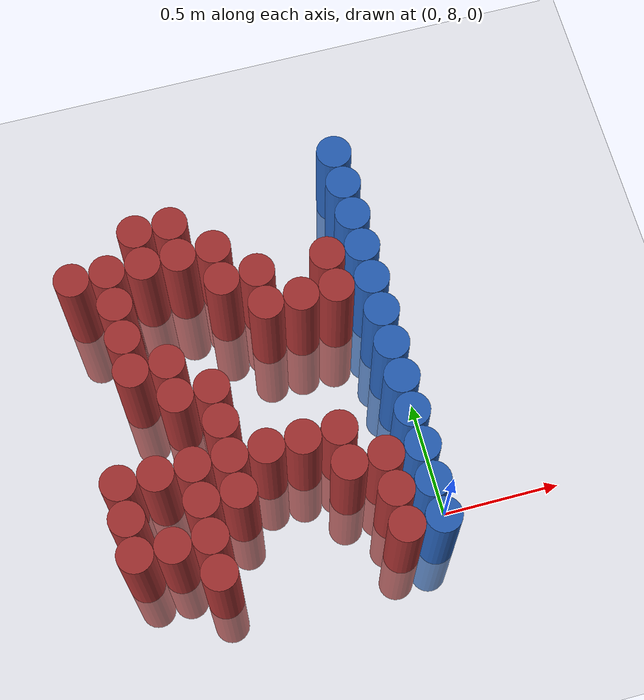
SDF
<sdf version="1.6">
 <world name="default">
  <model name="ground_plane">
   <static>1</static>
   <link name="link">
    <collision name="collision">
     <geometry><plane><normal>0 0 1</normal><size>100 100</size></plane></geometry>
     <surface><friction><ode><mu>100</mu><mu2>50</mu2></ode></friction></surface>
    </collision>
    <visual name="visual">
     <cast_shadows>0</cast_shadows>
     <geometry><plane><normal>0 0 1</normal><size>100 100</size></plane></geometry>
     <material>
      <script><uri>file://media/materials/scripts/gazebo.material</uri><name>Gazebo/Grey</name></script>
     </material>
    </visual>
   </link>
  </model>
  <model name="unit_cylinder_231">
   <static>1</static>
   <pose>-1.275000 8.025000 0.000000 0.000000 0.000000 0.000000</pose>
   <link name="link">
    <inertial>
     <mass>1</mass>
     <inertia><ixx>0.145833</ixx><ixy>0</ixy><ixz>0</ixz><iyy>0.145833</iyy><iyz>0</iyz><izz>0.125</izz></inertia>
    </inertial>
    <collision name="collision">
     <geometry><cylinder><radius>0.075000</radius><length>1</length></cylinder></geometry>
    </collision>
    <visual name="visual">
     <geometry><cylinder><radius>0.075000</radius><length>1</length></cylinder></geometry>
     <material>
      <ambient>0.648000 0.192000 0.192000 1</ambient>
      <diffuse>0.648000 0.192000 0.192000 1</diffuse>
     </material>
     <material>
      <script><name>Gazebo/Grey</name><uri>file://media/materials/scripts/gazebo.material</uri></script>
     </material>
    </visual>
   </link>
  </model>
  <model name="unit_cylinder_232">
   <static>1</static>
   <pose>-1.275000 8.175000 0.000000 0.000000 0.000000 0.000000</pose>
   <link name="link">
    <inertial>
     <mass>1</mass>
     <inertia><ixx>0.145833</ixx><ixy>0</ixy><ixz>0</ixz><iyy>0.145833</iyy><iyz>0</iyz><izz>0.125</izz></inertia>
    </inertial>
    <collision name="collision">
     <geometry><cylinder><radius>0.075000</radius><length>1</length></cylinder></geometry>
    </collision>
    <visual name="visual">
     <geometry><cylinder><radius>0.075000</radius><length>1</length></cylinder></geometry>
     <material>
      <ambient>0.648000 0.192000 0.192000 1</ambient>
      <diffuse>0.648000 0.192000 0.192000 1</diffuse>
     </material>
     <material>
      <script><name>Gazebo/Grey</name><uri>file://media/materials/scripts/gazebo.material</uri></script>
     </material>
    </visual>
   </link>
  </model>
  <model name="unit_cylinder_233">
   <static>1</static>
   <pose>-1.275000 8.325000 0.000000 0.000000 0.000000 0.000000</pose>
   <link name="link">
    <inertial>
     <mass>1</mass>
     <inertia><ixx>0.145833</ixx><ixy>0</ixy><ixz>0</ixz><iyy>0.145833</iyy><iyz>0</iyz><izz>0.125</izz></inertia>
    </inertial>
    <collision name="collision">
     <geometry><cylinder><radius>0.075000</radius><length>1</length></cylinder></geometry>
    </collision>
    <visual name="visual">
     <geometry><cylinder><radius>0.075000</radius><length>1</length></cylinder></geometry>
     <material>
      <ambient>0.648000 0.192000 0.192000 1</ambient>
      <diffuse>0.648000 0.192000 0.192000 1</diffuse>
     </material>
     <material>
      <script><name>Gazebo/Grey</name><uri>file://media/materials/scripts/gazebo.material</uri></script>
     </material>
    </visual>
   </link>
  </model>
  <model name="unit_cylinder_234">
   <static>1</static>
   <pose>-1.275000 9.225000 0.000000 0.000000 0.000000 0.000000</pose>
   <link name="link">
    <inertial>
     <mass>1</mass>
     <inertia><ixx>0.145833</ixx><ixy>0</ixy><ixz>0</ixz><iyy>0.145833</iyy><iyz>0</iyz><izz>0.125</izz></inertia>
    </inertial>
    <collision name="collision">
     <geometry><cylinder><radius>0.075000</radius><length>1</length></cylinder></geometry>
    </collision>
    <visual name="visual">
     <geometry><cylinder><radius>0.075000</radius><length>1</length></cylinder></geometry>
     <material>
      <ambient>0.648000 0.192000 0.192000 1</ambient>
      <diffuse>0.648000 0.192000 0.192000 1</diffuse>
     </material>
     <material>
      <script><name>Gazebo/Grey</name><uri>file://media/materials/scripts/gazebo.material</uri></script>
     </material>
    </visual>
   </link>
  </model>
  <model name="unit_cylinder_242">
   <static>1</static>
   <pose>-1.125000 8.025000 0.000000 0.000000 0.000000 0.000000</pose>
   <link name="link">
    <inertial>
     <mass>1</mass>
     <inertia><ixx>0.145833</ixx><ixy>0</ixy><ixz>0</ixz><iyy>0.145833</iyy><iyz>0</iyz><izz>0.125</izz></inertia>
    </inertial>
    <collision name="collision">
     <geometry><cylinder><radius>0.075000</radius><length>1</length></cylinder></geometry>
    </collision>
    <visual name="visual">
     <geometry><cylinder><radius>0.075000</radius><length>1</length></cylinder></geometry>
     <material>
      <ambient>0.648000 0.192000 0.192000 1</ambient>
      <diffuse>0.648000 0.192000 0.192000 1</diffuse>
     </material>
     <material>
      <script><name>Gazebo/Grey</name><uri>file://media/materials/scripts/gazebo.material</uri></script>
     </material>
    </visual>
   </link>
  </model>
  <model name="unit_cylinder_243">
   <static>1</static>
   <pose>-1.125000 8.325000 0.000000 0.000000 0.000000 0.000000</pose>
   <link name="link">
    <inertial>
     <mass>1</mass>
     <inertia><ixx>0.145833</ixx><ixy>0</ixy><ixz>0</ixz><iyy>0.145833</iyy><iyz>0</iyz><izz>0.125</izz></inertia>
    </inertial>
    <collision name="collision">
     <geometry><cylinder><radius>0.075000</radius><length>1</length></cylinder></geometry>
    </collision>
    <visual name="visual">
     <geometry><cylinder><radius>0.075000</radius><length>1</length></cylinder></geometry>
     <material>
      <ambient>0.648000 0.192000 0.192000 1</ambient>
      <diffuse>0.648000 0.192000 0.192000 1</diffuse>
     </material>
     <material>
      <script><name>Gazebo/Grey</name><uri>file://media/materials/scripts/gazebo.material</uri></script>
     </material>
    </visual>
   </link>
  </model>
  <model name="unit_cylinder_244">
   <static>1</static>
   <pose>-1.125000 8.775000 0.000000 0.000000 0.000000 0.000000</pose>
   <link name="link">
    <inertial>
     <mass>1</mass>
     <inertia><ixx>0.145833</ixx><ixy>0</ixy><ixz>0</ixz><iyy>0.145833</iyy><iyz>0</iyz><izz>0.125</izz></inertia>
    </inertial>
    <collision name="collision">
     <geometry><cylinder><radius>0.075000</radius><length>1</length></cylinder></geometry>
    </collision>
    <visual name="visual">
     <geometry><cylinder><radius>0.075000</radius><length>1</length></cylinder></geometry>
     <material>
      <ambient>0.648000 0.192000 0.192000 1</ambient>
      <diffuse>0.648000 0.192000 0.192000 1</diffuse>
     </material>
     <material>
      <script><name>Gazebo/Grey</name><uri>file://media/materials/scripts/gazebo.material</uri></script>
     </material>
    </visual>
   </link>
  </model>
  <model name="unit_cylinder_245">
   <static>1</static>
   <pose>-1.125000 8.925000 0.000000 0.000000 0.000000 0.000000</pose>
   <link name="link">
    <inertial>
     <mass>1</mass>
     <inertia><ixx>0.145833</ixx><ixy>0</ixy><ixz>0</ixz><iyy>0.145833</iyy><iyz>0</iyz><izz>0.125</izz></inertia>
    </inertial>
    <collision name="collision">
     <geometry><cylinder><radius>0.075000</radius><length>1</length></cylinder></geometry>
    </collision>
    <visual name="visual">
     <geometry><cylinder><radius>0.075000</radius><length>1</length></cylinder></geometry>
     <material>
      <ambient>0.648000 0.192000 0.192000 1</ambient>
      <diffuse>0.648000 0.192000 0.192000 1</diffuse>
     </material>
     <material>
      <script><name>Gazebo/Grey</name><uri>file://media/materials/scripts/gazebo.material</uri></script>
     </material>
    </visual>
   </link>
  </model>
  <model name="unit_cylinder_246">
   <static>1</static>
   <pose>-1.125000 9.075000 0.000000 0.000000 0.000000 0.000000</pose>
   <link name="link">
    <inertial>
     <mass>1</mass>
     <inertia><ixx>0.145833</ixx><ixy>0</ixy><ixz>0</ixz><iyy>0.145833</iyy><iyz>0</iyz><izz>0.125</izz></inertia>
    </inertial>
    <collision name="collision">
     <geometry><cylinder><radius>0.075000</radius><length>1</length></cylinder></geometry>
    </collision>
    <visual name="visual">
     <geometry><cylinder><radius>0.075000</radius><length>1</length></cylinder></geometry>
     <material>
      <ambient>0.648000 0.192000 0.192000 1</ambient>
      <diffuse>0.648000 0.192000 0.192000 1</diffuse>
     </material>
     <material>
      <script><name>Gazebo/Grey</name><uri>file://media/materials/scripts/gazebo.material</uri></script>
     </material>
    </visual>
   </link>
  </model>
  <model name="unit_cylinder_247">
   <static>1</static>
   <pose>-1.125000 9.225000 0.000000 0.000000 0.000000 0.000000</pose>
   <link name="link">
    <inertial>
     <mass>1</mass>
     <inertia><ixx>0.145833</ixx><ixy>0</ixy><ixz>0</ixz><iyy>0.145833</iyy><iyz>0</iyz><izz>0.125</izz></inertia>
    </inertial>
    <collision name="collision">
     <geometry><cylinder><radius>0.075000</radius><length>1</length></cylinder></geometry>
    </collision>
    <visual name="visual">
     <geometry><cylinder><radius>0.075000</radius><length>1</length></cylinder></geometry>
     <material>
      <ambient>0.648000 0.192000 0.192000 1</ambient>
      <diffuse>0.648000 0.192000 0.192000 1</diffuse>
     </material>
     <material>
      <script><name>Gazebo/Grey</name><uri>file://media/materials/scripts/gazebo.material</uri></script>
     </material>
    </visual>
   </link>
  </model>
  <model name="unit_cylinder_257">
   <static>1</static>
   <pose>-0.975000 7.875000 0.000000 0.000000 0.000000 0.000000</pose>
   <link name="link">
    <inertial>
     <mass>1</mass>
     <inertia><ixx>0.145833</ixx><ixy>0</ixy><ixz>0</ixz><iyy>0.145833</iyy><iyz>0</iyz><izz>0.125</izz></inertia>
    </inertial>
    <collision name="collision">
     <geometry><cylinder><radius>0.075000</radius><length>1</length></cylinder></geometry>
    </collision>
    <visual name="visual">
     <geometry><cylinder><radius>0.075000</radius><length>1</length></cylinder></geometry>
     <material>
      <ambient>0.648000 0.192000 0.192000 1</ambient>
      <diffuse>0.648000 0.192000 0.192000 1</diffuse>
     </material>
     <material>
      <script><name>Gazebo/Grey</name><uri>file://media/materials/scripts/gazebo.material</uri></script>
     </material>
    </visual>
   </link>
  </model>
  <model name="unit_cylinder_258">
   <static>1</static>
   <pose>-0.975000 8.025000 0.000000 0.000000 0.000000 0.000000</pose>
   <link name="link">
    <inertial>
     <mass>1</mass>
     <inertia><ixx>0.145833</ixx><ixy>0</ixy><ixz>0</ixz><iyy>0.145833</iyy><iyz>0</iyz><izz>0.125</izz></inertia>
    </inertial>
    <collision name="collision">
     <geometry><cylinder><radius>0.075000</radius><length>1</length></cylinder></geometry>
    </collision>
    <visual name="visual">
     <geometry><cylinder><radius>0.075000</radius><length>1</length></cylinder></geometry>
     <material>
      <ambient>0.648000 0.192000 0.192000 1</ambient>
      <diffuse>0.648000 0.192000 0.192000 1</diffuse>
     </material>
     <material>
      <script><name>Gazebo/Grey</name><uri>file://media/materials/scripts/gazebo.material</uri></script>
     </material>
    </visual>
   </link>
  </model>
  <model name="unit_cylinder_259">
   <static>1</static>
   <pose>-0.975000 8.175000 0.000000 0.000000 0.000000 0.000000</pose>
   <link name="link">
    <inertial>
     <mass>1</mass>
     <inertia><ixx>0.145833</ixx><ixy>0</ixy><ixz>0</ixz><iyy>0.145833</iyy><iyz>0</iyz><izz>0.125</izz></inertia>
    </inertial>
    <collision name="collision">
     <geometry><cylinder><radius>0.075000</radius><length>1</length></cylinder></geometry>
    </collision>
    <visual name="visual">
     <geometry><cylinder><radius>0.075000</radius><length>1</length></cylinder></geometry>
     <material>
      <ambient>0.648000 0.192000 0.192000 1</ambient>
      <diffuse>0.648000 0.192000 0.192000 1</diffuse>
     </material>
     <material>
      <script><name>Gazebo/Grey</name><uri>file://media/materials/scripts/gazebo.material</uri></script>
     </material>
    </visual>
   </link>
  </model>
  <model name="unit_cylinder_260">
   <static>1</static>
   <pose>-0.975000 8.325000 0.000000 0.000000 0.000000 0.000000</pose>
   <link name="link">
    <inertial>
     <mass>1</mass>
     <inertia><ixx>0.145833</ixx><ixy>0</ixy><ixz>0</ixz><iyy>0.145833</iyy><iyz>0</iyz><izz>0.125</izz></inertia>
    </inertial>
    <collision name="collision">
     <geometry><cylinder><radius>0.075000</radius><length>1</length></cylinder></geometry>
    </collision>
    <visual name="visual">
     <geometry><cylinder><radius>0.075000</radius><length>1</length></cylinder></geometry>
     <material>
      <ambient>0.648000 0.192000 0.192000 1</ambient>
      <diffuse>0.648000 0.192000 0.192000 1</diffuse>
     </material>
     <material>
      <script><name>Gazebo/Grey</name><uri>file://media/materials/scripts/gazebo.material</uri></script>
     </material>
    </visual>
   </link>
  </model>
  <model name="unit_cylinder_261">
   <static>1</static>
   <pose>-0.975000 8.625000 0.000000 0.000000 0.000000 0.000000</pose>
   <link name="link">
    <inertial>
     <mass>1</mass>
     <inertia><ixx>0.145833</ixx><ixy>0</ixy><ixz>0</ixz><iyy>0.145833</iyy><iyz>0</iyz><izz>0.125</izz></inertia>
    </inertial>
    <collision name="collision">
     <geometry><cylinder><radius>0.075000</radius><length>1</length></cylinder></geometry>
    </collision>
    <visual name="visual">
     <geometry><cylinder><radius>0.075000</radius><length>1</length></cylinder></geometry>
     <material>
      <ambient>0.648000 0.192000 0.192000 1</ambient>
      <diffuse>0.648000 0.192000 0.192000 1</diffuse>
     </material>
     <material>
      <script><name>Gazebo/Grey</name><uri>file://media/materials/scripts/gazebo.material</uri></script>
     </material>
    </visual>
   </link>
  </model>
  <model name="unit_cylinder_262">
   <static>1</static>
   <pose>-0.975000 8.775000 0.000000 0.000000 0.000000 0.000000</pose>
   <link name="link">
    <inertial>
     <mass>1</mass>
     <inertia><ixx>0.145833</ixx><ixy>0</ixy><ixz>0</ixz><iyy>0.145833</iyy><iyz>0</iyz><izz>0.125</izz></inertia>
    </inertial>
    <collision name="collision">
     <geometry><cylinder><radius>0.075000</radius><length>1</length></cylinder></geometry>
    </collision>
    <visual name="visual">
     <geometry><cylinder><radius>0.075000</radius><length>1</length></cylinder></geometry>
     <material>
      <ambient>0.648000 0.192000 0.192000 1</ambient>
      <diffuse>0.648000 0.192000 0.192000 1</diffuse>
     </material>
     <material>
      <script><name>Gazebo/Grey</name><uri>file://media/materials/scripts/gazebo.material</uri></script>
     </material>
    </visual>
   </link>
  </model>
  <model name="unit_cylinder_263">
   <static>1</static>
   <pose>-0.975000 9.225000 0.000000 0.000000 0.000000 0.000000</pose>
   <link name="link">
    <inertial>
     <mass>1</mass>
     <inertia><ixx>0.145833</ixx><ixy>0</ixy><ixz>0</ixz><iyy>0.145833</iyy><iyz>0</iyz><izz>0.125</izz></inertia>
    </inertial>
    <collision name="collision">
     <geometry><cylinder><radius>0.075000</radius><length>1</length></cylinder></geometry>
    </collision>
    <visual name="visual">
     <geometry><cylinder><radius>0.075000</radius><length>1</length></cylinder></geometry>
     <material>
      <ambient>0.648000 0.192000 0.192000 1</ambient>
      <diffuse>0.648000 0.192000 0.192000 1</diffuse>
     </material>
     <material>
      <script><name>Gazebo/Grey</name><uri>file://media/materials/scripts/gazebo.material</uri></script>
     </material>
    </visual>
   </link>
  </model>
  <model name="unit_cylinder_264">
   <static>1</static>
   <pose>-0.975000 9.375000 0.000000 0.000000 0.000000 0.000000</pose>
   <link name="link">
    <inertial>
     <mass>1</mass>
     <inertia><ixx>0.145833</ixx><ixy>0</ixy><ixz>0</ixz><iyy>0.145833</iyy><iyz>0</iyz><izz>0.125</izz></inertia>
    </inertial>
    <collision name="collision">
     <geometry><cylinder><radius>0.075000</radius><length>1</length></cylinder></geometry>
    </collision>
    <visual name="visual">
     <geometry><cylinder><radius>0.075000</radius><length>1</length></cylinder></geometry>
     <material>
      <ambient>0.648000 0.192000 0.192000 1</ambient>
      <diffuse>0.648000 0.192000 0.192000 1</diffuse>
     </material>
     <material>
      <script><name>Gazebo/Grey</name><uri>file://media/materials/scripts/gazebo.material</uri></script>
     </material>
    </visual>
   </link>
  </model>
  <model name="unit_cylinder_275">
   <static>1</static>
   <pose>-0.825000 8.175000 0.000000 0.000000 0.000000 0.000000</pose>
   <link name="link">
    <inertial>
     <mass>1</mass>
     <inertia><ixx>0.145833</ixx><ixy>0</ixy><ixz>0</ixz><iyy>0.145833</iyy><iyz>0</iyz><izz>0.125</izz></inertia>
    </inertial>
    <collision name="collision">
     <geometry><cylinder><radius>0.075000</radius><length>1</length></cylinder></geometry>
    </collision>
    <visual name="visual">
     <geometry><cylinder><radius>0.075000</radius><length>1</length></cylinder></geometry>
     <material>
      <ambient>0.648000 0.192000 0.192000 1</ambient>
      <diffuse>0.648000 0.192000 0.192000 1</diffuse>
     </material>
     <material>
      <script><name>Gazebo/Grey</name><uri>file://media/materials/scripts/gazebo.material</uri></script>
     </material>
    </visual>
   </link>
  </model>
  <model name="unit_cylinder_276">
   <static>1</static>
   <pose>-0.825000 8.325000 0.000000 0.000000 0.000000 0.000000</pose>
   <link name="link">
    <inertial>
     <mass>1</mass>
     <inertia><ixx>0.145833</ixx><ixy>0</ixy><ixz>0</ixz><iyy>0.145833</iyy><iyz>0</iyz><izz>0.125</izz></inertia>
    </inertial>
    <collision name="collision">
     <geometry><cylinder><radius>0.075000</radius><length>1</length></cylinder></geometry>
    </collision>
    <visual name="visual">
     <geometry><cylinder><radius>0.075000</radius><length>1</length></cylinder></geometry>
     <material>
      <ambient>0.648000 0.192000 0.192000 1</ambient>
      <diffuse>0.648000 0.192000 0.192000 1</diffuse>
     </material>
     <material>
      <script><name>Gazebo/Grey</name><uri>file://media/materials/scripts/gazebo.material</uri></script>
     </material>
    </visual>
   </link>
  </model>
  <model name="unit_cylinder_277">
   <static>1</static>
   <pose>-0.825000 8.475000 0.000000 0.000000 0.000000 0.000000</pose>
   <link name="link">
    <inertial>
     <mass>1</mass>
     <inertia><ixx>0.145833</ixx><ixy>0</ixy><ixz>0</ixz><iyy>0.145833</iyy><iyz>0</iyz><izz>0.125</izz></inertia>
    </inertial>
    <collision name="collision">
     <geometry><cylinder><radius>0.075000</radius><length>1</length></cylinder></geometry>
    </collision>
    <visual name="visual">
     <geometry><cylinder><radius>0.075000</radius><length>1</length></cylinder></geometry>
     <material>
      <ambient>0.648000 0.192000 0.192000 1</ambient>
      <diffuse>0.648000 0.192000 0.192000 1</diffuse>
     </material>
     <material>
      <script><name>Gazebo/Grey</name><uri>file://media/materials/scripts/gazebo.material</uri></script>
     </material>
    </visual>
   </link>
  </model>
  <model name="unit_cylinder_278">
   <static>1</static>
   <pose>-0.825000 8.625000 0.000000 0.000000 0.000000 0.000000</pose>
   <link name="link">
    <inertial>
     <mass>1</mass>
     <inertia><ixx>0.145833</ixx><ixy>0</ixy><ixz>0</ixz><iyy>0.145833</iyy><iyz>0</iyz><izz>0.125</izz></inertia>
    </inertial>
    <collision name="collision">
     <geometry><cylinder><radius>0.075000</radius><length>1</length></cylinder></geometry>
    </collision>
    <visual name="visual">
     <geometry><cylinder><radius>0.075000</radius><length>1</length></cylinder></geometry>
     <material>
      <ambient>0.648000 0.192000 0.192000 1</ambient>
      <diffuse>0.648000 0.192000 0.192000 1</diffuse>
     </material>
     <material>
      <script><name>Gazebo/Grey</name><uri>file://media/materials/scripts/gazebo.material</uri></script>
     </material>
    </visual>
   </link>
  </model>
  <model name="unit_cylinder_279">
   <static>1</static>
   <pose>-0.825000 9.225000 0.000000 0.000000 0.000000 0.000000</pose>
   <link name="link">
    <inertial>
     <mass>1</mass>
     <inertia><ixx>0.145833</ixx><ixy>0</ixy><ixz>0</ixz><iyy>0.145833</iyy><iyz>0</iyz><izz>0.125</izz></inertia>
    </inertial>
    <collision name="collision">
     <geometry><cylinder><radius>0.075000</radius><length>1</length></cylinder></geometry>
    </collision>
    <visual name="visual">
     <geometry><cylinder><radius>0.075000</radius><length>1</length></cylinder></geometry>
     <material>
      <ambient>0.648000 0.192000 0.192000 1</ambient>
      <diffuse>0.648000 0.192000 0.192000 1</diffuse>
     </material>
     <material>
      <script><name>Gazebo/Grey</name><uri>file://media/materials/scripts/gazebo.material</uri></script>
     </material>
    </visual>
   </link>
  </model>
  <model name="unit_cylinder_280">
   <static>1</static>
   <pose>-0.825000 9.375000 0.000000 0.000000 0.000000 0.000000</pose>
   <link name="link">
    <inertial>
     <mass>1</mass>
     <inertia><ixx>0.145833</ixx><ixy>0</ixy><ixz>0</ixz><iyy>0.145833</iyy><iyz>0</iyz><izz>0.125</izz></inertia>
    </inertial>
    <collision name="collision">
     <geometry><cylinder><radius>0.075000</radius><length>1</length></cylinder></geometry>
    </collision>
    <visual name="visual">
     <geometry><cylinder><radius>0.075000</radius><length>1</length></cylinder></geometry>
     <material>
      <ambient>0.648000 0.192000 0.192000 1</ambient>
      <diffuse>0.648000 0.192000 0.192000 1</diffuse>
     </material>
     <material>
      <script><name>Gazebo/Grey</name><uri>file://media/materials/scripts/gazebo.material</uri></script>
     </material>
    </visual>
   </link>
  </model>
  <model name="unit_cylinder_286">
   <static>1</static>
   <pose>-0.675000 8.325000 0.000000 0.000000 0.000000 0.000000</pose>
   <link name="link">
    <inertial>
     <mass>1</mass>
     <inertia><ixx>0.145833</ixx><ixy>0</ixy><ixz>0</ixz><iyy>0.145833</iyy><iyz>0</iyz><izz>0.125</izz></inertia>
    </inertial>
    <collision name="collision">
     <geometry><cylinder><radius>0.075000</radius><length>1</length></cylinder></geometry>
    </collision>
    <visual name="visual">
     <geometry><cylinder><radius>0.075000</radius><length>1</length></cylinder></geometry>
     <material>
      <ambient>0.648000 0.192000 0.192000 1</ambient>
      <diffuse>0.648000 0.192000 0.192000 1</diffuse>
     </material>
     <material>
      <script><name>Gazebo/Grey</name><uri>file://media/materials/scripts/gazebo.material</uri></script>
     </material>
    </visual>
   </link>
  </model>
  <model name="unit_cylinder_287">
   <static>1</static>
   <pose>-0.675000 9.075000 0.000000 0.000000 0.000000 0.000000</pose>
   <link name="link">
    <inertial>
     <mass>1</mass>
     <inertia><ixx>0.145833</ixx><ixy>0</ixy><ixz>0</ixz><iyy>0.145833</iyy><iyz>0</iyz><izz>0.125</izz></inertia>
    </inertial>
    <collision name="collision">
     <geometry><cylinder><radius>0.075000</radius><length>1</length></cylinder></geometry>
    </collision>
    <visual name="visual">
     <geometry><cylinder><radius>0.075000</radius><length>1</length></cylinder></geometry>
     <material>
      <ambient>0.648000 0.192000 0.192000 1</ambient>
      <diffuse>0.648000 0.192000 0.192000 1</diffuse>
     </material>
     <material>
      <script><name>Gazebo/Grey</name><uri>file://media/materials/scripts/gazebo.material</uri></script>
     </material>
    </visual>
   </link>
  </model>
  <model name="unit_cylinder_288">
   <static>1</static>
   <pose>-0.675000 9.225000 0.000000 0.000000 0.000000 0.000000</pose>
   <link name="link">
    <inertial>
     <mass>1</mass>
     <inertia><ixx>0.145833</ixx><ixy>0</ixy><ixz>0</ixz><iyy>0.145833</iyy><iyz>0</iyz><izz>0.125</izz></inertia>
    </inertial>
    <collision name="collision">
     <geometry><cylinder><radius>0.075000</radius><length>1</length></cylinder></geometry>
    </collision>
    <visual name="visual">
     <geometry><cylinder><radius>0.075000</radius><length>1</length></cylinder></geometry>
     <material>
      <ambient>0.648000 0.192000 0.192000 1</ambient>
      <diffuse>0.648000 0.192000 0.192000 1</diffuse>
     </material>
     <material>
      <script><name>Gazebo/Grey</name><uri>file://media/materials/scripts/gazebo.material</uri></script>
     </material>
    </visual>
   </link>
  </model>
  <model name="unit_cylinder_292">
   <static>1</static>
   <pose>-0.525000 8.325000 0.000000 0.000000 0.000000 0.000000</pose>
   <link name="link">
    <inertial>
     <mass>1</mass>
     <inertia><ixx>0.145833</ixx><ixy>0</ixy><ixz>0</ixz><iyy>0.145833</iyy><iyz>0</iyz><izz>0.125</izz></inertia>
    </inertial>
    <collision name="collision">
     <geometry><cylinder><radius>0.075000</radius><length>1</length></cylinder></geometry>
    </collision>
    <visual name="visual">
     <geometry><cylinder><radius>0.075000</radius><length>1</length></cylinder></geometry>
     <material>
      <ambient>0.648000 0.192000 0.192000 1</ambient>
      <diffuse>0.648000 0.192000 0.192000 1</diffuse>
     </material>
     <material>
      <script><name>Gazebo/Grey</name><uri>file://media/materials/scripts/gazebo.material</uri></script>
     </material>
    </visual>
   </link>
  </model>
  <model name="unit_cylinder_293">
   <static>1</static>
   <pose>-0.525000 8.925000 0.000000 0.000000 0.000000 0.000000</pose>
   <link name="link">
    <inertial>
     <mass>1</mass>
     <inertia><ixx>0.145833</ixx><ixy>0</ixy><ixz>0</ixz><iyy>0.145833</iyy><iyz>0</iyz><izz>0.125</izz></inertia>
    </inertial>
    <collision name="collision">
     <geometry><cylinder><radius>0.075000</radius><length>1</length></cylinder></geometry>
    </collision>
    <visual name="visual">
     <geometry><cylinder><radius>0.075000</radius><length>1</length></cylinder></geometry>
     <material>
      <ambient>0.648000 0.192000 0.192000 1</ambient>
      <diffuse>0.648000 0.192000 0.192000 1</diffuse>
     </material>
     <material>
      <script><name>Gazebo/Grey</name><uri>file://media/materials/scripts/gazebo.material</uri></script>
     </material>
    </visual>
   </link>
  </model>
  <model name="unit_cylinder_294">
   <static>1</static>
   <pose>-0.525000 9.075000 0.000000 0.000000 0.000000 0.000000</pose>
   <link name="link">
    <inertial>
     <mass>1</mass>
     <inertia><ixx>0.145833</ixx><ixy>0</ixy><ixz>0</ixz><iyy>0.145833</iyy><iyz>0</iyz><izz>0.125</izz></inertia>
    </inertial>
    <collision name="collision">
     <geometry><cylinder><radius>0.075000</radius><length>1</length></cylinder></geometry>
    </collision>
    <visual name="visual">
     <geometry><cylinder><radius>0.075000</radius><length>1</length></cylinder></geometry>
     <material>
      <ambient>0.648000 0.192000 0.192000 1</ambient>
      <diffuse>0.648000 0.192000 0.192000 1</diffuse>
     </material>
     <material>
      <script><name>Gazebo/Grey</name><uri>file://media/materials/scripts/gazebo.material</uri></script>
     </material>
    </visual>
   </link>
  </model>
  <model name="unit_cylinder_300">
   <static>1</static>
   <pose>-0.375000 8.175000 0.000000 0.000000 0.000000 0.000000</pose>
   <link name="link">
    <inertial>
     <mass>1</mass>
     <inertia><ixx>0.145833</ixx><ixy>0</ixy><ixz>0</ixz><iyy>0.145833</iyy><iyz>0</iyz><izz>0.125</izz></inertia>
    </inertial>
    <collision name="collision">
     <geometry><cylinder><radius>0.075000</radius><length>1</length></cylinder></geometry>
    </collision>
    <visual name="visual">
     <geometry><cylinder><radius>0.075000</radius><length>1</length></cylinder></geometry>
     <material>
      <ambient>0.648000 0.192000 0.192000 1</ambient>
      <diffuse>0.648000 0.192000 0.192000 1</diffuse>
     </material>
     <material>
      <script><name>Gazebo/Grey</name><uri>file://media/materials/scripts/gazebo.material</uri></script>
     </material>
    </visual>
   </link>
  </model>
  <model name="unit_cylinder_301">
   <static>1</static>
   <pose>-0.375000 8.325000 0.000000 0.000000 0.000000 0.000000</pose>
   <link name="link">
    <inertial>
     <mass>1</mass>
     <inertia><ixx>0.145833</ixx><ixy>0</ixy><ixz>0</ixz><iyy>0.145833</iyy><iyz>0</iyz><izz>0.125</izz></inertia>
    </inertial>
    <collision name="collision">
     <geometry><cylinder><radius>0.075000</radius><length>1</length></cylinder></geometry>
    </collision>
    <visual name="visual">
     <geometry><cylinder><radius>0.075000</radius><length>1</length></cylinder></geometry>
     <material>
      <ambient>0.648000 0.192000 0.192000 1</ambient>
      <diffuse>0.648000 0.192000 0.192000 1</diffuse>
     </material>
     <material>
      <script><name>Gazebo/Grey</name><uri>file://media/materials/scripts/gazebo.material</uri></script>
     </material>
    </visual>
   </link>
  </model>
  <model name="unit_cylinder_302">
   <static>1</static>
   <pose>-0.375000 8.925000 0.000000 0.000000 0.000000 0.000000</pose>
   <link name="link">
    <inertial>
     <mass>1</mass>
     <inertia><ixx>0.145833</ixx><ixy>0</ixy><ixz>0</ixz><iyy>0.145833</iyy><iyz>0</iyz><izz>0.125</izz></inertia>
    </inertial>
    <collision name="collision">
     <geometry><cylinder><radius>0.075000</radius><length>1</length></cylinder></geometry>
    </collision>
    <visual name="visual">
     <geometry><cylinder><radius>0.075000</radius><length>1</length></cylinder></geometry>
     <material>
      <ambient>0.648000 0.192000 0.192000 1</ambient>
      <diffuse>0.648000 0.192000 0.192000 1</diffuse>
     </material>
     <material>
      <script><name>Gazebo/Grey</name><uri>file://media/materials/scripts/gazebo.material</uri></script>
     </material>
    </visual>
   </link>
  </model>
  <model name="unit_cylinder_314">
   <static>1</static>
   <pose>-0.225000 7.875000 0.000000 0.000000 0.000000 0.000000</pose>
   <link name="link">
    <inertial>
     <mass>1</mass>
     <inertia><ixx>0.145833</ixx><ixy>0</ixy><ixz>0</ixz><iyy>0.145833</iyy><iyz>0</iyz><izz>0.125</izz></inertia>
    </inertial>
    <collision name="collision">
     <geometry><cylinder><radius>0.075000</radius><length>1</length></cylinder></geometry>
    </collision>
    <visual name="visual">
     <geometry><cylinder><radius>0.075000</radius><length>1</length></cylinder></geometry>
     <material>
      <ambient>0.648000 0.192000 0.192000 1</ambient>
      <diffuse>0.648000 0.192000 0.192000 1</diffuse>
     </material>
     <material>
      <script><name>Gazebo/Grey</name><uri>file://media/materials/scripts/gazebo.material</uri></script>
     </material>
    </visual>
   </link>
  </model>
  <model name="unit_cylinder_315">
   <static>1</static>
   <pose>-0.225000 8.025000 0.000000 0.000000 0.000000 0.000000</pose>
   <link name="link">
    <inertial>
     <mass>1</mass>
     <inertia><ixx>0.145833</ixx><ixy>0</ixy><ixz>0</ixz><iyy>0.145833</iyy><iyz>0</iyz><izz>0.125</izz></inertia>
    </inertial>
    <collision name="collision">
     <geometry><cylinder><radius>0.075000</radius><length>1</length></cylinder></geometry>
    </collision>
    <visual name="visual">
     <geometry><cylinder><radius>0.075000</radius><length>1</length></cylinder></geometry>
     <material>
      <ambient>0.648000 0.192000 0.192000 1</ambient>
      <diffuse>0.648000 0.192000 0.192000 1</diffuse>
     </material>
     <material>
      <script><name>Gazebo/Grey</name><uri>file://media/materials/scripts/gazebo.material</uri></script>
     </material>
    </visual>
   </link>
  </model>
  <model name="unit_cylinder_316">
   <static>1</static>
   <pose>-0.225000 8.175000 0.000000 0.000000 0.000000 0.000000</pose>
   <link name="link">
    <inertial>
     <mass>1</mass>
     <inertia><ixx>0.145833</ixx><ixy>0</ixy><ixz>0</ixz><iyy>0.145833</iyy><iyz>0</iyz><izz>0.125</izz></inertia>
    </inertial>
    <collision name="collision">
     <geometry><cylinder><radius>0.075000</radius><length>1</length></cylinder></geometry>
    </collision>
    <visual name="visual">
     <geometry><cylinder><radius>0.075000</radius><length>1</length></cylinder></geometry>
     <material>
      <ambient>0.648000 0.192000 0.192000 1</ambient>
      <diffuse>0.648000 0.192000 0.192000 1</diffuse>
     </material>
     <material>
      <script><name>Gazebo/Grey</name><uri>file://media/materials/scripts/gazebo.material</uri></script>
     </material>
    </visual>
   </link>
  </model>
  <model name="unit_cylinder_317">
   <static>1</static>
   <pose>-0.225000 8.925000 0.000000 0.000000 0.000000 0.000000</pose>
   <link name="link">
    <inertial>
     <mass>1</mass>
     <inertia><ixx>0.145833</ixx><ixy>0</ixy><ixz>0</ixz><iyy>0.145833</iyy><iyz>0</iyz><izz>0.125</izz></inertia>
    </inertial>
    <collision name="collision">
     <geometry><cylinder><radius>0.075000</radius><length>1</length></cylinder></geometry>
    </collision>
    <visual name="visual">
     <geometry><cylinder><radius>0.075000</radius><length>1</length></cylinder></geometry>
     <material>
      <ambient>0.648000 0.192000 0.192000 1</ambient>
      <diffuse>0.648000 0.192000 0.192000 1</diffuse>
     </material>
     <material>
      <script><name>Gazebo/Grey</name><uri>file://media/materials/scripts/gazebo.material</uri></script>
     </material>
    </visual>
   </link>
  </model>
  <model name="unit_cylinder_318">
   <static>1</static>
   <pose>-0.225000 9.075000 0.000000 0.000000 0.000000 0.000000</pose>
   <link name="link">
    <inertial>
     <mass>1</mass>
     <inertia><ixx>0.145833</ixx><ixy>0</ixy><ixz>0</ixz><iyy>0.145833</iyy><iyz>0</iyz><izz>0.125</izz></inertia>
    </inertial>
    <collision name="collision">
     <geometry><cylinder><radius>0.075000</radius><length>1</length></cylinder></geometry>
    </collision>
    <visual name="visual">
     <geometry><cylinder><radius>0.075000</radius><length>1</length></cylinder></geometry>
     <material>
      <ambient>0.648000 0.192000 0.192000 1</ambient>
      <diffuse>0.648000 0.192000 0.192000 1</diffuse>
     </material>
     <material>
      <script><name>Gazebo/Grey</name><uri>file://media/materials/scripts/gazebo.material</uri></script>
     </material>
    </visual>
   </link>
  </model>
  <model name="unit_cylinder_337">
   <static>1</static>
   <pose>-0.075000 7.875000 0.000000 0.000000 0.000000 0.000000</pose>
   <link name="link">
    <inertial>
     <mass>1</mass>
     <inertia><ixx>0.145833</ixx><ixy>0</ixy><ixz>0</ixz><iyy>0.145833</iyy><iyz>0</iyz><izz>0.125</izz></inertia>
    </inertial>
    <collision name="collision">
     <geometry><cylinder><radius>0.075000</radius><length>1</length></cylinder></geometry>
    </collision>
    <visual name="visual">
     <geometry><cylinder><radius>0.075000</radius><length>1</length></cylinder></geometry>
     <material>
      <ambient>0.152000 0.379000 0.720000 1</ambient>
      <diffuse>0.152000 0.379000 0.720000 1</diffuse>
     </material>
     <material>
      <script><name>Gazebo/Grey</name><uri>file://media/materials/scripts/gazebo.material</uri></script>
     </material>
    </visual>
   </link>
  </model>
  <model name="unit_cylinder_338">
   <static>1</static>
   <pose>-0.075000 8.025000 0.000000 0.000000 0.000000 0.000000</pose>
   <link name="link">
    <inertial>
     <mass>1</mass>
     <inertia><ixx>0.145833</ixx><ixy>0</ixy><ixz>0</ixz><iyy>0.145833</iyy><iyz>0</iyz><izz>0.125</izz></inertia>
    </inertial>
    <collision name="collision">
     <geometry><cylinder><radius>0.075000</radius><length>1</length></cylinder></geometry>
    </collision>
    <visual name="visual">
     <geometry><cylinder><radius>0.075000</radius><length>1</length></cylinder></geometry>
     <material>
      <ambient>0.152000 0.379000 0.720000 1</ambient>
      <diffuse>0.152000 0.379000 0.720000 1</diffuse>
     </material>
     <material>
      <script><name>Gazebo/Grey</name><uri>file://media/materials/scripts/gazebo.material</uri></script>
     </material>
    </visual>
   </link>
  </model>
  <model name="unit_cylinder_339">
   <static>1</static>
   <pose>-0.075000 8.175000 0.000000 0.000000 0.000000 0.000000</pose>
   <link name="link">
    <inertial>
     <mass>1</mass>
     <inertia><ixx>0.145833</ixx><ixy>0</ixy><ixz>0</ixz><iyy>0.145833</iyy><iyz>0</iyz><izz>0.125</izz></inertia>
    </inertial>
    <collision name="collision">
     <geometry><cylinder><radius>0.075000</radius><length>1</length></cylinder></geometry>
    </collision>
    <visual name="visual">
     <geometry><cylinder><radius>0.075000</radius><length>1</length></cylinder></geometry>
     <material>
      <ambient>0.152000 0.379000 0.720000 1</ambient>
      <diffuse>0.152000 0.379000 0.720000 1</diffuse>
     </material>
     <material>
      <script><name>Gazebo/Grey</name><uri>file://media/materials/scripts/gazebo.material</uri></script>
     </material>
    </visual>
   </link>
  </model>
  <model name="unit_cylinder_340">
   <static>1</static>
   <pose>-0.075000 8.325000 0.000000 0.000000 0.000000 0.000000</pose>
   <link name="link">
    <inertial>
     <mass>1</mass>
     <inertia><ixx>0.145833</ixx><ixy>0</ixy><ixz>0</ixz><iyy>0.145833</iyy><iyz>0</iyz><izz>0.125</izz></inertia>
    </inertial>
    <collision name="collision">
     <geometry><cylinder><radius>0.075000</radius><length>1</length></cylinder></geometry>
    </collision>
    <visual name="visual">
     <geometry><cylinder><radius>0.075000</radius><length>1</length></cylinder></geometry>
     <material>
      <ambient>0.152000 0.379000 0.720000 1</ambient>
      <diffuse>0.152000 0.379000 0.720000 1</diffuse>
     </material>
     <material>
      <script><name>Gazebo/Grey</name><uri>file://media/materials/scripts/gazebo.material</uri></script>
     </material>
    </visual>
   </link>
  </model>
  <model name="unit_cylinder_341">
   <static>1</static>
   <pose>-0.075000 8.475000 0.000000 0.000000 0.000000 0.000000</pose>
   <link name="link">
    <inertial>
     <mass>1</mass>
     <inertia><ixx>0.145833</ixx><ixy>0</ixy><ixz>0</ixz><iyy>0.145833</iyy><iyz>0</iyz><izz>0.125</izz></inertia>
    </inertial>
    <collision name="collision">
     <geometry><cylinder><radius>0.075000</radius><length>1</length></cylinder></geometry>
    </collision>
    <visual name="visual">
     <geometry><cylinder><radius>0.075000</radius><length>1</length></cylinder></geometry>
     <material>
      <ambient>0.152000 0.379000 0.720000 1</ambient>
      <diffuse>0.152000 0.379000 0.720000 1</diffuse>
     </material>
     <material>
      <script><name>Gazebo/Grey</name><uri>file://media/materials/scripts/gazebo.material</uri></script>
     </material>
    </visual>
   </link>
  </model>
  <model name="unit_cylinder_342">
   <static>1</static>
   <pose>-0.075000 8.625000 0.000000 0.000000 0.000000 0.000000</pose>
   <link name="link">
    <inertial>
     <mass>1</mass>
     <inertia><ixx>0.145833</ixx><ixy>0</ixy><ixz>0</ixz><iyy>0.145833</iyy><iyz>0</iyz><izz>0.125</izz></inertia>
    </inertial>
    <collision name="collision">
     <geometry><cylinder><radius>0.075000</radius><length>1</length></cylinder></geometry>
    </collision>
    <visual name="visual">
     <geometry><cylinder><radius>0.075000</radius><length>1</length></cylinder></geometry>
     <material>
      <ambient>0.152000 0.379000 0.720000 1</ambient>
      <diffuse>0.152000 0.379000 0.720000 1</diffuse>
     </material>
     <material>
      <script><name>Gazebo/Grey</name><uri>file://media/materials/scripts/gazebo.material</uri></script>
     </material>
    </visual>
   </link>
  </model>
  <model name="unit_cylinder_343">
   <static>1</static>
   <pose>-0.075000 8.775000 0.000000 0.000000 0.000000 0.000000</pose>
   <link name="link">
    <inertial>
     <mass>1</mass>
     <inertia><ixx>0.145833</ixx><ixy>0</ixy><ixz>0</ixz><iyy>0.145833</iyy><iyz>0</iyz><izz>0.125</izz></inertia>
    </inertial>
    <collision name="collision">
     <geometry><cylinder><radius>0.075000</radius><length>1</length></cylinder></geometry>
    </collision>
    <visual name="visual">
     <geometry><cylinder><radius>0.075000</radius><length>1</length></cylinder></geometry>
     <material>
      <ambient>0.152000 0.379000 0.720000 1</ambient>
      <diffuse>0.152000 0.379000 0.720000 1</diffuse>
     </material>
     <material>
      <script><name>Gazebo/Grey</name><uri>file://media/materials/scripts/gazebo.material</uri></script>
     </material>
    </visual>
   </link>
  </model>
  <model name="unit_cylinder_344">
   <static>1</static>
   <pose>-0.075000 8.925000 0.000000 0.000000 0.000000 0.000000</pose>
   <link name="link">
    <inertial>
     <mass>1</mass>
     <inertia><ixx>0.145833</ixx><ixy>0</ixy><ixz>0</ixz><iyy>0.145833</iyy><iyz>0</iyz><izz>0.125</izz></inertia>
    </inertial>
    <collision name="collision">
     <geometry><cylinder><radius>0.075000</radius><length>1</length></cylinder></geometry>
    </collision>
    <visual name="visual">
     <geometry><cylinder><radius>0.075000</radius><length>1</length></cylinder></geometry>
     <material>
      <ambient>0.152000 0.379000 0.720000 1</ambient>
      <diffuse>0.152000 0.379000 0.720000 1</diffuse>
     </material>
     <material>
      <script><name>Gazebo/Grey</name><uri>file://media/materials/scripts/gazebo.material</uri></script>
     </material>
    </visual>
   </link>
  </model>
  <model name="unit_cylinder_345">
   <static>1</static>
   <pose>-0.075000 9.075000 0.000000 0.000000 0.000000 0.000000</pose>
   <link name="link">
    <inertial>
     <mass>1</mass>
     <inertia><ixx>0.145833</ixx><ixy>0</ixy><ixz>0</ixz><iyy>0.145833</iyy><iyz>0</iyz><izz>0.125</izz></inertia>
    </inertial>
    <collision name="collision">
     <geometry><cylinder><radius>0.075000</radius><length>1</length></cylinder></geometry>
    </collision>
    <visual name="visual">
     <geometry><cylinder><radius>0.075000</radius><length>1</length></cylinder></geometry>
     <material>
      <ambient>0.152000 0.379000 0.720000 1</ambient>
      <diffuse>0.152000 0.379000 0.720000 1</diffuse>
     </material>
     <material>
      <script><name>Gazebo/Grey</name><uri>file://media/materials/scripts/gazebo.material</uri></script>
     </material>
    </visual>
   </link>
  </model>
  <model name="unit_cylinder_346">
   <static>1</static>
   <pose>-0.075000 9.225000 0.000000 0.000000 0.000000 0.000000</pose>
   <link name="link">
    <inertial>
     <mass>1</mass>
     <inertia><ixx>0.145833</ixx><ixy>0</ixy><ixz>0</ixz><iyy>0.145833</iyy><iyz>0</iyz><izz>0.125</izz></inertia>
    </inertial>
    <collision name="collision">
     <geometry><cylinder><radius>0.075000</radius><length>1</length></cylinder></geometry>
    </collision>
    <visual name="visual">
     <geometry><cylinder><radius>0.075000</radius><length>1</length></cylinder></geometry>
     <material>
      <ambient>0.152000 0.379000 0.720000 1</ambient>
      <diffuse>0.152000 0.379000 0.720000 1</diffuse>
     </material>
     <material>
      <script><name>Gazebo/Grey</name><uri>file://media/materials/scripts/gazebo.material</uri></script>
     </material>
    </visual>
   </link>
  </model>
  <model name="unit_cylinder_347">
   <static>1</static>
   <pose>-0.075000 9.375000 0.000000 0.000000 0.000000 0.000000</pose>
   <link name="link">
    <inertial>
     <mass>1</mass>
     <inertia><ixx>0.145833</ixx><ixy>0</ixy><ixz>0</ixz><iyy>0.145833</iyy><iyz>0</iyz><izz>0.125</izz></inertia>
    </inertial>
    <collision name="collision">
     <geometry><cylinder><radius>0.075000</radius><length>1</length></cylinder></geometry>
    </collision>
    <visual name="visual">
     <geometry><cylinder><radius>0.075000</radius><length>1</length></cylinder></geometry>
     <material>
      <ambient>0.152000 0.379000 0.720000 1</ambient>
      <diffuse>0.152000 0.379000 0.720000 1</diffuse>
     </material>
     <material>
      <script><name>Gazebo/Grey</name><uri>file://media/materials/scripts/gazebo.material</uri></script>
     </material>
    </visual>
   </link>
  </model>
  <model name="unit_cylinder_348">
   <static>1</static>
   <pose>-0.075000 9.525000 0.000000 0.000000 0.000000 0.000000</pose>
   <link name="link">
    <inertial>
     <mass>1</mass>
     <inertia><ixx>0.145833</ixx><ixy>0</ixy><ixz>0</ixz><iyy>0.145833</iyy><iyz>0</iyz><izz>0.125</izz></inertia>
    </inertial>
    <collision name="collision">
     <geometry><cylinder><radius>0.075000</radius><length>1</length></cylinder></geometry>
    </collision>
    <visual name="visual">
     <geometry><cylinder><radius>0.075000</radius><length>1</length></cylinder></geometry>
     <material>
      <ambient>0.152000 0.379000 0.720000 1</ambient>
      <diffuse>0.152000 0.379000 0.720000 1</diffuse>
     </material>
     <material>
      <script><name>Gazebo/Grey</name><uri>file://media/materials/scripts/gazebo.material</uri></script>
     </material>
    </visual>
   </link>
  </model>
 </world>
</sdf>
